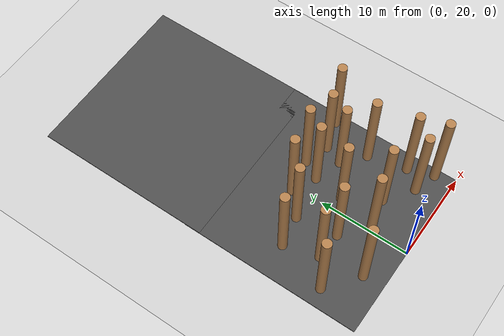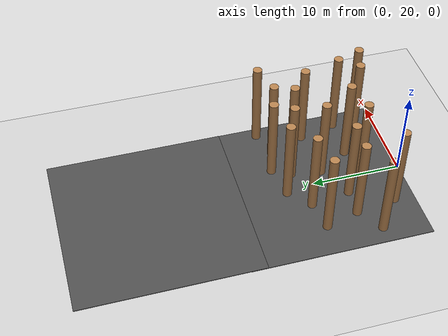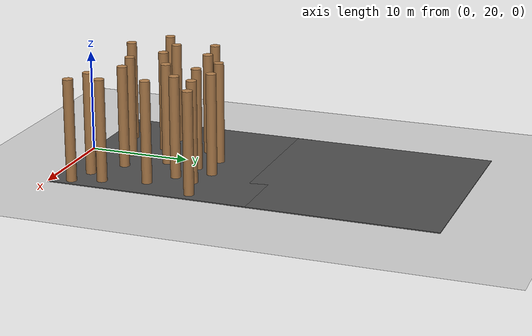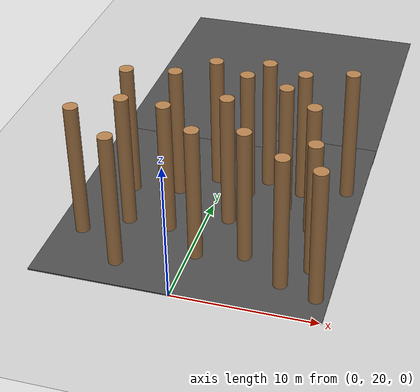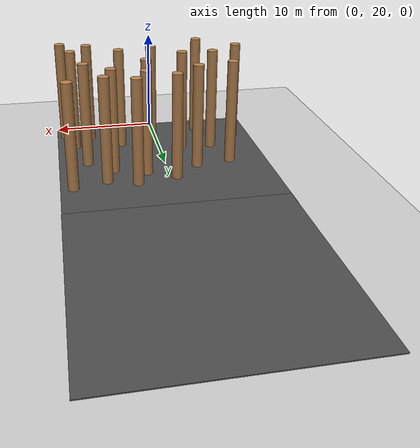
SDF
<sdf version="1.6">
 <world name="default">
  <model name="ground_plane">
   <static>1</static>
   <link name="link">
    <collision name="collision">
     <geometry><plane><normal>0 0 1</normal><size>100 100</size></plane></geometry>
     <surface><friction><ode><mu>100</mu><mu2>50</mu2></ode></friction></surface>
    </collision>
    <visual name="visual">
     <cast_shadows>0</cast_shadows>
     <geometry><plane><normal>0 0 1</normal><size>100 100</size></plane></geometry>
     <material>
      <script><uri>file://media/materials/scripts/gazebo.material</uri><name>Gazebo/Grey</name></script>
     </material>
    </visual>
   </link>
  </model>
  <model name="asphalt_plane_2">
   <static>1</static>
   <link name="link">
    <collision name="collision"><geometry><box><size>20 20 0.1</size></box></geometry></collision>
    <visual name="visual">
     <cast_shadows>0</cast_shadows>
     <geometry><box><size>20 20 0.1</size></box></geometry>
     <material>
      <script>
       <uri>model://asphalt_plane/materials/scripts</uri>
       <uri>model://asphalt_plane/materials/textures</uri>
       <name>vrc/asphalt</name>
      </script>
     </material>
    </visual>
   </link>
   <pose>0.117642 29.9977 0 0 -0 0</pose>
  </model>
  <model name="train_3">
   <link name="link_0_clone_0_clone_11_clone_19">
    <pose>7.08596 18.8441 0.043478 0 -0 3e-06</pose>
    <inertial>
     <mass>1000</mass>
     <inertia><ixx>0.145833</ixx><ixy>0</ixy><ixz>0</ixz><iyy>0.145833</iyy><iyz>0</iyz><izz>0.125</izz></inertia>
    </inertial>
    <visual name="visual">
     <pose>0 0 4.5 0 -0 0</pose>
     <geometry><cylinder><radius>0.5</radius><length>10</length></cylinder></geometry>
     <material>
      <lighting>1</lighting>
      <script><uri>file://media/materials/scripts/gazebo.material</uri><name>Gazebo/WoodFloor</name></script>
      <ambient>0.3 0.3 0.3 1</ambient>
      <diffuse>0.7 0.7 0.7 1</diffuse>
      <specular>0.01 0.01 0.01 1</specular>
      <emissive>0 0 0 1</emissive>
      <shader type="vertex"><normal_map>__default__</normal_map></shader>
     </material>
    </visual>
    <collision name="collision">
     <pose>0 0 4.5 0 -0 0</pose>
     <geometry><cylinder><radius>0.5</radius><length>10</length></cylinder></geometry>
     <surface>
      <friction>
       <ode><mu>1</mu><mu2>1</mu2><fdir1>0 0 0</fdir1><slip1>0</slip1><slip2>0</slip2></ode>
       <torsional>
        <coefficient>1</coefficient>
        <patch_radius>0</patch_radius>
        <surface_radius>0</surface_radius>
        <use_patch_radius>1</use_patch_radius>
        <ode><slip>0</slip></ode>
       </torsional>
      </friction>
      <bounce><restitution_coefficient>0</restitution_coefficient><threshold>1e+06</threshold></bounce>
      <contact>
       <collide_without_contact>0</collide_without_contact>
       <collide_without_contact_bitmask>1</collide_without_contact_bitmask>
       <collide_bitmask>1</collide_bitmask>
       <ode>
        <soft_cfm>0</soft_cfm>
        <soft_erp>0.2</soft_erp>
        <kp>1e+13</kp>
        <kd>1</kd>
        <max_vel>0.01</max_vel>
        <min_depth>0</min_depth>
       </ode>
       <bullet>
        <split_impulse>1</split_impulse>
        <split_impulse_penetration_threshold>-0.01</split_impulse_penetration_threshold>
        <soft_cfm>0</soft_cfm>
        <soft_erp>0.2</soft_erp>
        <kp>1e+13</kp>
        <kd>1</kd>
       </bullet>
      </contact>
     </surface>
    </collision>
   </link>
   <link name="link_0_clone_0_clone_16">
    <pose>-3.95167 12.6277 0.043478 0 -0 0</pose>
    <inertial>
     <mass>1000</mass>
     <inertia><ixx>0.145833</ixx><ixy>0</ixy><ixz>0</ixz><iyy>0.145833</iyy><iyz>0</iyz><izz>0.125</izz></inertia>
    </inertial>
    <visual name="visual">
     <pose>0 0 4.5 0 -0 0</pose>
     <geometry><cylinder><radius>0.5</radius><length>10</length></cylinder></geometry>
     <material>
      <lighting>1</lighting>
      <script><uri>file://media/materials/scripts/gazebo.material</uri><name>Gazebo/WoodFloor</name></script>
      <ambient>0.3 0.3 0.3 1</ambient>
      <diffuse>0.7 0.7 0.7 1</diffuse>
      <specular>0.01 0.01 0.01 1</specular>
      <emissive>0 0 0 1</emissive>
      <shader type="vertex"><normal_map>__default__</normal_map></shader>
     </material>
    </visual>
    <collision name="collision">
     <pose>0 0 4.5 0 -0 0</pose>
     <geometry><cylinder><radius>0.5</radius><length>10</length></cylinder></geometry>
     <surface>
      <friction>
       <ode><mu>1</mu><mu2>1</mu2><fdir1>0 0 0</fdir1><slip1>0</slip1><slip2>0</slip2></ode>
       <torsional>
        <coefficient>1</coefficient>
        <patch_radius>0</patch_radius>
        <surface_radius>0</surface_radius>
        <use_patch_radius>1</use_patch_radius>
        <ode><slip>0</slip></ode>
       </torsional>
      </friction>
      <bounce><restitution_coefficient>0</restitution_coefficient><threshold>1e+06</threshold></bounce>
      <contact>
       <collide_without_contact>0</collide_without_contact>
       <collide_without_contact_bitmask>1</collide_without_contact_bitmask>
       <collide_bitmask>1</collide_bitmask>
       <ode>
        <soft_cfm>0</soft_cfm>
        <soft_erp>0.2</soft_erp>
        <kp>1e+13</kp>
        <kd>1</kd>
        <max_vel>0.01</max_vel>
        <min_depth>0</min_depth>
       </ode>
       <bullet>
        <split_impulse>1</split_impulse>
        <split_impulse_penetration_threshold>-0.01</split_impulse_penetration_threshold>
        <soft_cfm>0</soft_cfm>
        <soft_erp>0.2</soft_erp>
        <kp>1e+13</kp>
        <kd>1</kd>
       </bullet>
      </contact>
     </surface>
    </collision>
   </link>
   <link name="link_0_clone_0_clone_5_clone_18">
    <pose>0.694929 19.0204 0.043478 0 -0 3e-06</pose>
    <inertial>
     <mass>1000</mass>
     <inertia><ixx>0.145833</ixx><ixy>0</ixy><ixz>0</ixz><iyy>0.145833</iyy><iyz>0</iyz><izz>0.125</izz></inertia>
    </inertial>
    <visual name="visual">
     <pose>0 0 4.5 0 -0 0</pose>
     <geometry><cylinder><radius>0.5</radius><length>10</length></cylinder></geometry>
     <material>
      <lighting>1</lighting>
      <script><uri>file://media/materials/scripts/gazebo.material</uri><name>Gazebo/WoodFloor</name></script>
      <ambient>0.3 0.3 0.3 1</ambient>
      <diffuse>0.7 0.7 0.7 1</diffuse>
      <specular>0.01 0.01 0.01 1</specular>
      <emissive>0 0 0 1</emissive>
      <shader type="vertex"><normal_map>__default__</normal_map></shader>
     </material>
    </visual>
    <collision name="collision">
     <pose>0 0 4.5 0 -0 0</pose>
     <geometry><cylinder><radius>0.5</radius><length>10</length></cylinder></geometry>
     <surface>
      <friction>
       <ode><mu>1</mu><mu2>1</mu2><fdir1>0 0 0</fdir1><slip1>0</slip1><slip2>0</slip2></ode>
       <torsional>
        <coefficient>1</coefficient>
        <patch_radius>0</patch_radius>
        <surface_radius>0</surface_radius>
        <use_patch_radius>1</use_patch_radius>
        <ode><slip>0</slip></ode>
       </torsional>
      </friction>
      <bounce><restitution_coefficient>0</restitution_coefficient><threshold>1e+06</threshold></bounce>
      <contact>
       <collide_without_contact>0</collide_without_contact>
       <collide_without_contact_bitmask>1</collide_without_contact_bitmask>
       <collide_bitmask>1</collide_bitmask>
       <ode>
        <soft_cfm>0</soft_cfm>
        <soft_erp>0.2</soft_erp>
        <kp>1e+13</kp>
        <kd>1</kd>
        <max_vel>0.01</max_vel>
        <min_depth>0</min_depth>
       </ode>
       <bullet>
        <split_impulse>1</split_impulse>
        <split_impulse_penetration_threshold>-0.01</split_impulse_penetration_threshold>
        <soft_cfm>0</soft_cfm>
        <soft_erp>0.2</soft_erp>
        <kp>1e+13</kp>
        <kd>1</kd>
       </bullet>
      </contact>
     </surface>
    </collision>
   </link>
   <link name="link_0_clone_0_clone_5_clone_19">
    <pose>-4.98555 16.3648 0.043478 0 -0 3e-06</pose>
    <inertial>
     <mass>1000</mass>
     <inertia><ixx>0.145833</ixx><ixy>0</ixy><ixz>0</ixz><iyy>0.145833</iyy><iyz>0</iyz><izz>0.125</izz></inertia>
    </inertial>
    <visual name="visual">
     <pose>0 0 4.5 0 -0 0</pose>
     <geometry><cylinder><radius>0.5</radius><length>10</length></cylinder></geometry>
     <material>
      <lighting>1</lighting>
      <script><uri>file://media/materials/scripts/gazebo.material</uri><name>Gazebo/WoodFloor</name></script>
      <ambient>0.3 0.3 0.3 1</ambient>
      <diffuse>0.7 0.7 0.7 1</diffuse>
      <specular>0.01 0.01 0.01 1</specular>
      <emissive>0 0 0 1</emissive>
      <shader type="vertex"><normal_map>__default__</normal_map></shader>
     </material>
    </visual>
    <collision name="collision">
     <pose>0 0 4.5 0 -0 0</pose>
     <geometry><cylinder><radius>0.5</radius><length>10</length></cylinder></geometry>
     <surface>
      <friction>
       <ode><mu>1</mu><mu2>1</mu2><fdir1>0 0 0</fdir1><slip1>0</slip1><slip2>0</slip2></ode>
       <torsional>
        <coefficient>1</coefficient>
        <patch_radius>0</patch_radius>
        <surface_radius>0</surface_radius>
        <use_patch_radius>1</use_patch_radius>
        <ode><slip>0</slip></ode>
       </torsional>
      </friction>
      <bounce><restitution_coefficient>0</restitution_coefficient><threshold>1e+06</threshold></bounce>
      <contact>
       <collide_without_contact>0</collide_without_contact>
       <collide_without_contact_bitmask>1</collide_without_contact_bitmask>
       <collide_bitmask>1</collide_bitmask>
       <ode>
        <soft_cfm>0</soft_cfm>
        <soft_erp>0.2</soft_erp>
        <kp>1e+13</kp>
        <kd>1</kd>
        <max_vel>0.01</max_vel>
        <min_depth>0</min_depth>
       </ode>
       <bullet>
        <split_impulse>1</split_impulse>
        <split_impulse_penetration_threshold>-0.01</split_impulse_penetration_threshold>
        <soft_cfm>0</soft_cfm>
        <soft_erp>0.2</soft_erp>
        <kp>1e+13</kp>
        <kd>1</kd>
       </bullet>
      </contact>
     </surface>
    </collision>
   </link>
   <link name="link_0_clone_0_clone_5_clone_19_clone">
    <pose>-0.976364 12.5026 0.043478 0 -0 6e-06</pose>
    <inertial>
     <mass>1000</mass>
     <inertia><ixx>0.145833</ixx><ixy>0</ixy><ixz>0</ixz><iyy>0.145833</iyy><iyz>0</iyz><izz>0.125</izz></inertia>
    </inertial>
    <visual name="visual">
     <pose>0 0 4.5 0 -0 0</pose>
     <geometry><cylinder><radius>0.5</radius><length>10</length></cylinder></geometry>
     <material>
      <lighting>1</lighting>
      <script><uri>file://media/materials/scripts/gazebo.material</uri><name>Gazebo/WoodFloor</name></script>
      <ambient>0.3 0.3 0.3 1</ambient>
      <diffuse>0.7 0.7 0.7 1</diffuse>
      <specular>0.01 0.01 0.01 1</specular>
      <emissive>0 0 0 1</emissive>
      <shader type="vertex"><normal_map>__default__</normal_map></shader>
     </material>
    </visual>
    <collision name="collision">
     <pose>0 0 4.5 0 -0 0</pose>
     <geometry><cylinder><radius>0.5</radius><length>10</length></cylinder></geometry>
     <surface>
      <friction>
       <ode><mu>1</mu><mu2>1</mu2><fdir1>0 0 0</fdir1><slip1>0</slip1><slip2>0</slip2></ode>
       <torsional>
        <coefficient>1</coefficient>
        <patch_radius>0</patch_radius>
        <surface_radius>0</surface_radius>
        <use_patch_radius>1</use_patch_radius>
        <ode><slip>0</slip></ode>
       </torsional>
      </friction>
      <bounce><restitution_coefficient>0</restitution_coefficient><threshold>1e+06</threshold></bounce>
      <contact>
       <collide_without_contact>0</collide_without_contact>
       <collide_without_contact_bitmask>1</collide_without_contact_bitmask>
       <collide_bitmask>1</collide_bitmask>
       <ode>
        <soft_cfm>0</soft_cfm>
        <soft_erp>0.2</soft_erp>
        <kp>1e+13</kp>
        <kd>1</kd>
        <max_vel>0.01</max_vel>
        <min_depth>0</min_depth>
       </ode>
       <bullet>
        <split_impulse>1</split_impulse>
        <split_impulse_penetration_threshold>-0.01</split_impulse_penetration_threshold>
        <soft_cfm>0</soft_cfm>
        <soft_erp>0.2</soft_erp>
        <kp>1e+13</kp>
        <kd>1</kd>
       </bullet>
      </contact>
     </surface>
    </collision>
   </link>
   <link name="link_0_clone_0_clone_5_clone_19_clone_12">
    <pose>-3.25564 8.05891 0.043478 0 -0 6e-06</pose>
    <inertial>
     <mass>1000</mass>
     <inertia><ixx>0.145833</ixx><ixy>0</ixy><ixz>0</ixz><iyy>0.145833</iyy><iyz>0</iyz><izz>0.125</izz></inertia>
    </inertial>
    <visual name="visual">
     <pose>0 0 4.5 0 -0 0</pose>
     <geometry><cylinder><radius>0.5</radius><length>10</length></cylinder></geometry>
     <material>
      <lighting>1</lighting>
      <script><uri>file://media/materials/scripts/gazebo.material</uri><name>Gazebo/WoodFloor</name></script>
      <ambient>0.3 0.3 0.3 1</ambient>
      <diffuse>0.7 0.7 0.7 1</diffuse>
      <specular>0.01 0.01 0.01 1</specular>
      <emissive>0 0 0 1</emissive>
      <shader type="vertex"><normal_map>__default__</normal_map></shader>
     </material>
    </visual>
    <collision name="collision">
     <pose>0 0 4.5 0 -0 0</pose>
     <geometry><cylinder><radius>0.5</radius><length>10</length></cylinder></geometry>
     <surface>
      <friction>
       <ode><mu>1</mu><mu2>1</mu2><fdir1>0 0 0</fdir1><slip1>0</slip1><slip2>0</slip2></ode>
       <torsional>
        <coefficient>1</coefficient>
        <patch_radius>0</patch_radius>
        <surface_radius>0</surface_radius>
        <use_patch_radius>1</use_patch_radius>
        <ode><slip>0</slip></ode>
       </torsional>
      </friction>
      <bounce><restitution_coefficient>0</restitution_coefficient><threshold>1e+06</threshold></bounce>
      <contact>
       <collide_without_contact>0</collide_without_contact>
       <collide_without_contact_bitmask>1</collide_without_contact_bitmask>
       <collide_bitmask>1</collide_bitmask>
       <ode>
        <soft_cfm>0</soft_cfm>
        <soft_erp>0.2</soft_erp>
        <kp>1e+13</kp>
        <kd>1</kd>
        <max_vel>0.01</max_vel>
        <min_depth>0</min_depth>
       </ode>
       <bullet>
        <split_impulse>1</split_impulse>
        <split_impulse_penetration_threshold>-0.01</split_impulse_penetration_threshold>
        <soft_cfm>0</soft_cfm>
        <soft_erp>0.2</soft_erp>
        <kp>1e+13</kp>
        <kd>1</kd>
       </bullet>
      </contact>
     </surface>
    </collision>
   </link>
   <link name="link_0_clone_0_clone_5_clone_19_clone_16">
    <pose>10.5244 7.88191 0.043478 0 -0 6e-06</pose>
    <inertial>
     <mass>1000</mass>
     <inertia><ixx>0.145833</ixx><ixy>0</ixy><ixz>0</ixz><iyy>0.145833</iyy><iyz>0</iyz><izz>0.125</izz></inertia>
    </inertial>
    <visual name="visual">
     <pose>0 0 4.5 0 -0 0</pose>
     <geometry><cylinder><radius>0.5</radius><length>10</length></cylinder></geometry>
     <material>
      <lighting>1</lighting>
      <script><uri>file://media/materials/scripts/gazebo.material</uri><name>Gazebo/WoodFloor</name></script>
      <ambient>0.3 0.3 0.3 1</ambient>
      <diffuse>0.7 0.7 0.7 1</diffuse>
      <specular>0.01 0.01 0.01 1</specular>
      <emissive>0 0 0 1</emissive>
      <shader type="vertex"><normal_map>__default__</normal_map></shader>
     </material>
    </visual>
    <collision name="collision">
     <pose>0 0 4.5 0 -0 0</pose>
     <geometry><cylinder><radius>0.5</radius><length>10</length></cylinder></geometry>
     <surface>
      <friction>
       <ode><mu>1</mu><mu2>1</mu2><fdir1>0 0 0</fdir1><slip1>0</slip1><slip2>0</slip2></ode>
       <torsional>
        <coefficient>1</coefficient>
        <patch_radius>0</patch_radius>
        <surface_radius>0</surface_radius>
        <use_patch_radius>1</use_patch_radius>
        <ode><slip>0</slip></ode>
       </torsional>
      </friction>
      <bounce><restitution_coefficient>0</restitution_coefficient><threshold>1e+06</threshold></bounce>
      <contact>
       <collide_without_contact>0</collide_without_contact>
       <collide_without_contact_bitmask>1</collide_without_contact_bitmask>
       <collide_bitmask>1</collide_bitmask>
       <ode>
        <soft_cfm>0</soft_cfm>
        <soft_erp>0.2</soft_erp>
        <kp>1e+13</kp>
        <kd>1</kd>
        <max_vel>0.01</max_vel>
        <min_depth>0</min_depth>
       </ode>
       <bullet>
        <split_impulse>1</split_impulse>
        <split_impulse_penetration_threshold>-0.01</split_impulse_penetration_threshold>
        <soft_cfm>0</soft_cfm>
        <soft_erp>0.2</soft_erp>
        <kp>1e+13</kp>
        <kd>1</kd>
       </bullet>
      </contact>
     </surface>
    </collision>
   </link>
   <link name="link_0_clone_0_clone_5_clone_19_clone_2">
    <pose>4.96938 10.8147 0.043478 0 -0 6e-06</pose>
    <inertial>
     <mass>1000</mass>
     <inertia><ixx>0.145833</ixx><ixy>0</ixy><ixz>0</ixz><iyy>0.145833</iyy><iyz>0</iyz><izz>0.125</izz></inertia>
    </inertial>
    <visual name="visual">
     <pose>0 0 4.5 0 -0 0</pose>
     <geometry><cylinder><radius>0.5</radius><length>10</length></cylinder></geometry>
     <material>
      <lighting>1</lighting>
      <script><uri>file://media/materials/scripts/gazebo.material</uri><name>Gazebo/WoodFloor</name></script>
      <ambient>0.3 0.3 0.3 1</ambient>
      <diffuse>0.7 0.7 0.7 1</diffuse>
      <specular>0.01 0.01 0.01 1</specular>
      <emissive>0 0 0 1</emissive>
      <shader type="vertex"><normal_map>__default__</normal_map></shader>
     </material>
    </visual>
    <collision name="collision">
     <pose>0 0 4.5 0 -0 0</pose>
     <geometry><cylinder><radius>0.5</radius><length>10</length></cylinder></geometry>
     <surface>
      <friction>
       <ode><mu>1</mu><mu2>1</mu2><fdir1>0 0 0</fdir1><slip1>0</slip1><slip2>0</slip2></ode>
       <torsional>
        <coefficient>1</coefficient>
        <patch_radius>0</patch_radius>
        <surface_radius>0</surface_radius>
        <use_patch_radius>1</use_patch_radius>
        <ode><slip>0</slip></ode>
       </torsional>
      </friction>
      <bounce><restitution_coefficient>0</restitution_coefficient><threshold>1e+06</threshold></bounce>
      <contact>
       <collide_without_contact>0</collide_without_contact>
       <collide_without_contact_bitmask>1</collide_without_contact_bitmask>
       <collide_bitmask>1</collide_bitmask>
       <ode>
        <soft_cfm>0</soft_cfm>
        <soft_erp>0.2</soft_erp>
        <kp>1e+13</kp>
        <kd>1</kd>
        <max_vel>0.01</max_vel>
        <min_depth>0</min_depth>
       </ode>
       <bullet>
        <split_impulse>1</split_impulse>
        <split_impulse_penetration_threshold>-0.01</split_impulse_penetration_threshold>
        <soft_cfm>0</soft_cfm>
        <soft_erp>0.2</soft_erp>
        <kp>1e+13</kp>
        <kd>1</kd>
       </bullet>
      </contact>
     </surface>
    </collision>
   </link>
   <link name="link_0_clone_0_clone_5_clone_19_clone_20">
    <pose>6.27389 16.7532 0.043478 0 -0 6e-06</pose>
    <inertial>
     <mass>1000</mass>
     <inertia><ixx>0.145833</ixx><ixy>0</ixy><ixz>0</ixz><iyy>0.145833</iyy><iyz>0</iyz><izz>0.125</izz></inertia>
    </inertial>
    <visual name="visual">
     <pose>0 0 4.5 0 -0 0</pose>
     <geometry><cylinder><radius>0.5</radius><length>10</length></cylinder></geometry>
     <material>
      <lighting>1</lighting>
      <script><uri>file://media/materials/scripts/gazebo.material</uri><name>Gazebo/WoodFloor</name></script>
      <ambient>0.3 0.3 0.3 1</ambient>
      <diffuse>0.7 0.7 0.7 1</diffuse>
      <specular>0.01 0.01 0.01 1</specular>
      <emissive>0 0 0 1</emissive>
      <shader type="vertex"><normal_map>__default__</normal_map></shader>
     </material>
    </visual>
    <collision name="collision">
     <pose>0 0 4.5 0 -0 0</pose>
     <geometry><cylinder><radius>0.5</radius><length>10</length></cylinder></geometry>
     <surface>
      <friction>
       <ode><mu>1</mu><mu2>1</mu2><fdir1>0 0 0</fdir1><slip1>0</slip1><slip2>0</slip2></ode>
       <torsional>
        <coefficient>1</coefficient>
        <patch_radius>0</patch_radius>
        <surface_radius>0</surface_radius>
        <use_patch_radius>1</use_patch_radius>
        <ode><slip>0</slip></ode>
       </torsional>
      </friction>
      <bounce><restitution_coefficient>0</restitution_coefficient><threshold>1e+06</threshold></bounce>
      <contact>
       <collide_without_contact>0</collide_without_contact>
       <collide_without_contact_bitmask>1</collide_without_contact_bitmask>
       <collide_bitmask>1</collide_bitmask>
       <ode>
        <soft_cfm>0</soft_cfm>
        <soft_erp>0.2</soft_erp>
        <kp>1e+13</kp>
        <kd>1</kd>
        <max_vel>0.01</max_vel>
        <min_depth>0</min_depth>
       </ode>
       <bullet>
        <split_impulse>1</split_impulse>
        <split_impulse_penetration_threshold>-0.01</split_impulse_penetration_threshold>
        <soft_cfm>0</soft_cfm>
        <soft_erp>0.2</soft_erp>
        <kp>1e+13</kp>
        <kd>1</kd>
       </bullet>
      </contact>
     </surface>
    </collision>
   </link>
   <link name="link_0_clone_0_clone_5_clone_19_clone_22">
    <pose>-1.63603 16.9437 0.043478 0 -0 6e-06</pose>
    <inertial>
     <mass>1000</mass>
     <inertia><ixx>0.145833</ixx><ixy>0</ixy><ixz>0</ixz><iyy>0.145833</iyy><iyz>0</iyz><izz>0.125</izz></inertia>
    </inertial>
    <visual name="visual">
     <pose>0 0 4.5 0 -0 0</pose>
     <geometry><cylinder><radius>0.5</radius><length>10</length></cylinder></geometry>
     <material>
      <lighting>1</lighting>
      <script><uri>file://media/materials/scripts/gazebo.material</uri><name>Gazebo/WoodFloor</name></script>
      <ambient>0.3 0.3 0.3 1</ambient>
      <diffuse>0.7 0.7 0.7 1</diffuse>
      <specular>0.01 0.01 0.01 1</specular>
      <emissive>0 0 0 1</emissive>
      <shader type="vertex"><normal_map>__default__</normal_map></shader>
     </material>
    </visual>
    <collision name="collision">
     <pose>0 0 4.5 0 -0 0</pose>
     <geometry><cylinder><radius>0.5</radius><length>10</length></cylinder></geometry>
     <surface>
      <friction>
       <ode><mu>1</mu><mu2>1</mu2><fdir1>0 0 0</fdir1><slip1>0</slip1><slip2>0</slip2></ode>
       <torsional>
        <coefficient>1</coefficient>
        <patch_radius>0</patch_radius>
        <surface_radius>0</surface_radius>
        <use_patch_radius>1</use_patch_radius>
        <ode><slip>0</slip></ode>
       </torsional>
      </friction>
      <bounce><restitution_coefficient>0</restitution_coefficient><threshold>1e+06</threshold></bounce>
      <contact>
       <collide_without_contact>0</collide_without_contact>
       <collide_without_contact_bitmask>1</collide_without_contact_bitmask>
       <collide_bitmask>1</collide_bitmask>
       <ode>
        <soft_cfm>0</soft_cfm>
        <soft_erp>0.2</soft_erp>
        <kp>1e+13</kp>
        <kd>1</kd>
        <max_vel>0.01</max_vel>
        <min_depth>0</min_depth>
       </ode>
       <bullet>
        <split_impulse>1</split_impulse>
        <split_impulse_penetration_threshold>-0.01</split_impulse_penetration_threshold>
        <soft_cfm>0</soft_cfm>
        <soft_erp>0.2</soft_erp>
        <kp>1e+13</kp>
        <kd>1</kd>
       </bullet>
      </contact>
     </surface>
    </collision>
   </link>
   <link name="link_0_clone_0_clone_5_clone_19_clone_23">
    <pose>4.36938 19.6972 0.043478 0 -0 6e-06</pose>
    <inertial>
     <mass>1000</mass>
     <inertia><ixx>0.145833</ixx><ixy>0</ixy><ixz>0</ixz><iyy>0.145833</iyy><iyz>0</iyz><izz>0.125</izz></inertia>
    </inertial>
    <visual name="visual">
     <pose>0 0 4.5 0 -0 0</pose>
     <geometry><cylinder><radius>0.5</radius><length>10</length></cylinder></geometry>
     <material>
      <lighting>1</lighting>
      <script><uri>file://media/materials/scripts/gazebo.material</uri><name>Gazebo/WoodFloor</name></script>
      <ambient>0.3 0.3 0.3 1</ambient>
      <diffuse>0.7 0.7 0.7 1</diffuse>
      <specular>0.01 0.01 0.01 1</specular>
      <emissive>0 0 0 1</emissive>
      <shader type="vertex"><normal_map>__default__</normal_map></shader>
     </material>
    </visual>
    <collision name="collision">
     <pose>0 0 4.5 0 -0 0</pose>
     <geometry><cylinder><radius>0.5</radius><length>10</length></cylinder></geometry>
     <surface>
      <friction>
       <ode><mu>1</mu><mu2>1</mu2><fdir1>0 0 0</fdir1><slip1>0</slip1><slip2>0</slip2></ode>
       <torsional>
        <coefficient>1</coefficient>
        <patch_radius>0</patch_radius>
        <surface_radius>0</surface_radius>
        <use_patch_radius>1</use_patch_radius>
        <ode><slip>0</slip></ode>
       </torsional>
      </friction>
      <bounce><restitution_coefficient>0</restitution_coefficient><threshold>1e+06</threshold></bounce>
      <contact>
       <collide_without_contact>0</collide_without_contact>
       <collide_without_contact_bitmask>1</collide_without_contact_bitmask>
       <collide_bitmask>1</collide_bitmask>
       <ode>
        <soft_cfm>0</soft_cfm>
        <soft_erp>0.2</soft_erp>
        <kp>1e+13</kp>
        <kd>1</kd>
        <max_vel>0.01</max_vel>
        <min_depth>0</min_depth>
       </ode>
       <bullet>
        <split_impulse>1</split_impulse>
        <split_impulse_penetration_threshold>-0.01</split_impulse_penetration_threshold>
        <soft_cfm>0</soft_cfm>
        <soft_erp>0.2</soft_erp>
        <kp>1e+13</kp>
        <kd>1</kd>
       </bullet>
      </contact>
     </surface>
    </collision>
   </link>
   <link name="link_0_clone_0_clone_5_clone_19_clone_3">
    <pose>9.60678 10.6242 0.043478 0 -0 6e-06</pose>
    <inertial>
     <mass>1000</mass>
     <inertia><ixx>0.145833</ixx><ixy>0</ixy><ixz>0</ixz><iyy>0.145833</iyy><iyz>0</iyz><izz>0.125</izz></inertia>
    </inertial>
    <visual name="visual">
     <pose>0 0 4.5 0 -0 0</pose>
     <geometry><cylinder><radius>0.5</radius><length>10</length></cylinder></geometry>
     <material>
      <lighting>1</lighting>
      <script><uri>file://media/materials/scripts/gazebo.material</uri><name>Gazebo/WoodFloor</name></script>
      <ambient>0.3 0.3 0.3 1</ambient>
      <diffuse>0.7 0.7 0.7 1</diffuse>
      <specular>0.01 0.01 0.01 1</specular>
      <emissive>0 0 0 1</emissive>
      <shader type="vertex"><normal_map>__default__</normal_map></shader>
     </material>
    </visual>
    <collision name="collision">
     <pose>0 0 4.5 0 -0 0</pose>
     <geometry><cylinder><radius>0.5</radius><length>10</length></cylinder></geometry>
     <surface>
      <friction>
       <ode><mu>1</mu><mu2>1</mu2><fdir1>0 0 0</fdir1><slip1>0</slip1><slip2>0</slip2></ode>
       <torsional>
        <coefficient>1</coefficient>
        <patch_radius>0</patch_radius>
        <surface_radius>0</surface_radius>
        <use_patch_radius>1</use_patch_radius>
        <ode><slip>0</slip></ode>
       </torsional>
      </friction>
      <bounce><restitution_coefficient>0</restitution_coefficient><threshold>1e+06</threshold></bounce>
      <contact>
       <collide_without_contact>0</collide_without_contact>
       <collide_without_contact_bitmask>1</collide_without_contact_bitmask>
       <collide_bitmask>1</collide_bitmask>
       <ode>
        <soft_cfm>0</soft_cfm>
        <soft_erp>0.2</soft_erp>
        <kp>1e+13</kp>
        <kd>1</kd>
        <max_vel>0.01</max_vel>
        <min_depth>0</min_depth>
       </ode>
       <bullet>
        <split_impulse>1</split_impulse>
        <split_impulse_penetration_threshold>-0.01</split_impulse_penetration_threshold>
        <soft_cfm>0</soft_cfm>
        <soft_erp>0.2</soft_erp>
        <kp>1e+13</kp>
        <kd>1</kd>
       </bullet>
      </contact>
     </surface>
    </collision>
   </link>
   <link name="link_0_clone_0_clone_5_clone_19_clone_5">
    <pose>-6.72609 10.7532 0.043478 0 -0 6e-06</pose>
    <inertial>
     <mass>1000</mass>
     <inertia><ixx>0.145833</ixx><ixy>0</ixy><ixz>0</ixz><iyy>0.145833</iyy><iyz>0</iyz><izz>0.125</izz></inertia>
    </inertial>
    <visual name="visual">
     <pose>0 0 4.5 0 -0 0</pose>
     <geometry><cylinder><radius>0.5</radius><length>10</length></cylinder></geometry>
     <material>
      <lighting>1</lighting>
      <script><uri>file://media/materials/scripts/gazebo.material</uri><name>Gazebo/WoodFloor</name></script>
      <ambient>0.3 0.3 0.3 1</ambient>
      <diffuse>0.7 0.7 0.7 1</diffuse>
      <specular>0.01 0.01 0.01 1</specular>
      <emissive>0 0 0 1</emissive>
      <shader type="vertex"><normal_map>__default__</normal_map></shader>
     </material>
    </visual>
    <collision name="collision">
     <pose>0 0 4.5 0 -0 0</pose>
     <geometry><cylinder><radius>0.5</radius><length>10</length></cylinder></geometry>
     <surface>
      <friction>
       <ode><mu>1</mu><mu2>1</mu2><fdir1>0 0 0</fdir1><slip1>0</slip1><slip2>0</slip2></ode>
       <torsional>
        <coefficient>1</coefficient>
        <patch_radius>0</patch_radius>
        <surface_radius>0</surface_radius>
        <use_patch_radius>1</use_patch_radius>
        <ode><slip>0</slip></ode>
       </torsional>
      </friction>
      <bounce><restitution_coefficient>0</restitution_coefficient><threshold>1e+06</threshold></bounce>
      <contact>
       <collide_without_contact>0</collide_without_contact>
       <collide_without_contact_bitmask>1</collide_without_contact_bitmask>
       <collide_bitmask>1</collide_bitmask>
       <ode>
        <soft_cfm>0</soft_cfm>
        <soft_erp>0.2</soft_erp>
        <kp>1e+13</kp>
        <kd>1</kd>
        <max_vel>0.01</max_vel>
        <min_depth>0</min_depth>
       </ode>
       <bullet>
        <split_impulse>1</split_impulse>
        <split_impulse_penetration_threshold>-0.01</split_impulse_penetration_threshold>
        <soft_cfm>0</soft_cfm>
        <soft_erp>0.2</soft_erp>
        <kp>1e+13</kp>
        <kd>1</kd>
       </bullet>
      </contact>
     </surface>
    </collision>
   </link>
   <link name="link_0_clone_0_clone_5_clone_6_clone_14">
    <pose>2.79926 14.4023 0.043478 0 -0 6e-06</pose>
    <inertial>
     <mass>1000</mass>
     <inertia><ixx>0.145833</ixx><ixy>0</ixy><ixz>0</ixz><iyy>0.145833</iyy><iyz>0</iyz><izz>0.125</izz></inertia>
    </inertial>
    <visual name="visual">
     <pose>0 0 4.5 0 -0 0</pose>
     <geometry><cylinder><radius>0.5</radius><length>10</length></cylinder></geometry>
     <material>
      <lighting>1</lighting>
      <script><uri>file://media/materials/scripts/gazebo.material</uri><name>Gazebo/WoodFloor</name></script>
      <ambient>0.3 0.3 0.3 1</ambient>
      <diffuse>0.7 0.7 0.7 1</diffuse>
      <specular>0.01 0.01 0.01 1</specular>
      <emissive>0 0 0 1</emissive>
      <shader type="vertex"><normal_map>__default__</normal_map></shader>
     </material>
    </visual>
    <collision name="collision">
     <pose>0 0 4.5 0 -0 0</pose>
     <geometry><cylinder><radius>0.5</radius><length>10</length></cylinder></geometry>
     <surface>
      <friction>
       <ode><mu>1</mu><mu2>1</mu2><fdir1>0 0 0</fdir1><slip1>0</slip1><slip2>0</slip2></ode>
       <torsional>
        <coefficient>1</coefficient>
        <patch_radius>0</patch_radius>
        <surface_radius>0</surface_radius>
        <use_patch_radius>1</use_patch_radius>
        <ode><slip>0</slip></ode>
       </torsional>
      </friction>
      <bounce><restitution_coefficient>0</restitution_coefficient><threshold>1e+06</threshold></bounce>
      <contact>
       <collide_without_contact>0</collide_without_contact>
       <collide_without_contact_bitmask>1</collide_without_contact_bitmask>
       <collide_bitmask>1</collide_bitmask>
       <ode>
        <soft_cfm>0</soft_cfm>
        <soft_erp>0.2</soft_erp>
        <kp>1e+13</kp>
        <kd>1</kd>
        <max_vel>0.01</max_vel>
        <min_depth>0</min_depth>
       </ode>
       <bullet>
        <split_impulse>1</split_impulse>
        <split_impulse_penetration_threshold>-0.01</split_impulse_penetration_threshold>
        <soft_cfm>0</soft_cfm>
        <soft_erp>0.2</soft_erp>
        <kp>1e+13</kp>
        <kd>1</kd>
       </bullet>
      </contact>
     </surface>
    </collision>
   </link>
   <link name="link_0_clone_0_clone_5_clone_6_clone_15">
    <pose>8.60647 14.81 0.043478 0 -0 6e-06</pose>
    <inertial>
     <mass>1000</mass>
     <inertia><ixx>0.145833</ixx><ixy>0</ixy><ixz>0</ixz><iyy>0.145833</iyy><iyz>0</iyz><izz>0.125</izz></inertia>
    </inertial>
    <visual name="visual">
     <pose>0 0 4.5 0 -0 0</pose>
     <geometry><cylinder><radius>0.5</radius><length>10</length></cylinder></geometry>
     <material>
      <lighting>1</lighting>
      <script><uri>file://media/materials/scripts/gazebo.material</uri><name>Gazebo/WoodFloor</name></script>
      <ambient>0.3 0.3 0.3 1</ambient>
      <diffuse>0.7 0.7 0.7 1</diffuse>
      <specular>0.01 0.01 0.01 1</specular>
      <emissive>0 0 0 1</emissive>
      <shader type="vertex"><normal_map>__default__</normal_map></shader>
     </material>
    </visual>
    <collision name="collision">
     <pose>0 0 4.5 0 -0 0</pose>
     <geometry><cylinder><radius>0.5</radius><length>10</length></cylinder></geometry>
     <surface>
      <friction>
       <ode><mu>1</mu><mu2>1</mu2><fdir1>0 0 0</fdir1><slip1>0</slip1><slip2>0</slip2></ode>
       <torsional>
        <coefficient>1</coefficient>
        <patch_radius>0</patch_radius>
        <surface_radius>0</surface_radius>
        <use_patch_radius>1</use_patch_radius>
        <ode><slip>0</slip></ode>
       </torsional>
      </friction>
      <bounce><restitution_coefficient>0</restitution_coefficient><threshold>1e+06</threshold></bounce>
      <contact>
       <collide_without_contact>0</collide_without_contact>
       <collide_without_contact_bitmask>1</collide_without_contact_bitmask>
       <collide_bitmask>1</collide_bitmask>
       <ode>
        <soft_cfm>0</soft_cfm>
        <soft_erp>0.2</soft_erp>
        <kp>1e+13</kp>
        <kd>1</kd>
        <max_vel>0.01</max_vel>
        <min_depth>0</min_depth>
       </ode>
       <bullet>
        <split_impulse>1</split_impulse>
        <split_impulse_penetration_threshold>-0.01</split_impulse_penetration_threshold>
        <soft_cfm>0</soft_cfm>
        <soft_erp>0.2</soft_erp>
        <kp>1e+13</kp>
        <kd>1</kd>
       </bullet>
      </contact>
     </surface>
    </collision>
   </link>
   <link name="link_0_clone_0_clone_5_clone_6_clone_16">
    <pose>10.2103 19.7617 0.043478 0 -0 6e-06</pose>
    <inertial>
     <mass>1000</mass>
     <inertia><ixx>0.145833</ixx><ixy>0</ixy><ixz>0</ixz><iyy>0.145833</iyy><iyz>0</iyz><izz>0.125</izz></inertia>
    </inertial>
    <visual name="visual">
     <pose>0 0 4.5 0 -0 0</pose>
     <geometry><cylinder><radius>0.5</radius><length>10</length></cylinder></geometry>
     <material>
      <lighting>1</lighting>
      <script><uri>file://media/materials/scripts/gazebo.material</uri><name>Gazebo/WoodFloor</name></script>
      <ambient>0.3 0.3 0.3 1</ambient>
      <diffuse>0.7 0.7 0.7 1</diffuse>
      <specular>0.01 0.01 0.01 1</specular>
      <emissive>0 0 0 1</emissive>
      <shader type="vertex"><normal_map>__default__</normal_map></shader>
     </material>
    </visual>
    <collision name="collision">
     <pose>0 0 4.5 0 -0 0</pose>
     <geometry><cylinder><radius>0.5</radius><length>10</length></cylinder></geometry>
     <surface>
      <friction>
       <ode><mu>1</mu><mu2>1</mu2><fdir1>0 0 0</fdir1><slip1>0</slip1><slip2>0</slip2></ode>
       <torsional>
        <coefficient>1</coefficient>
        <patch_radius>0</patch_radius>
        <surface_radius>0</surface_radius>
        <use_patch_radius>1</use_patch_radius>
        <ode><slip>0</slip></ode>
       </torsional>
      </friction>
      <bounce><restitution_coefficient>0</restitution_coefficient><threshold>1e+06</threshold></bounce>
      <contact>
       <collide_without_contact>0</collide_without_contact>
       <collide_without_contact_bitmask>1</collide_without_contact_bitmask>
       <collide_bitmask>1</collide_bitmask>
       <ode>
        <soft_cfm>0</soft_cfm>
        <soft_erp>0.2</soft_erp>
        <kp>1e+13</kp>
        <kd>1</kd>
        <max_vel>0.01</max_vel>
        <min_depth>0</min_depth>
       </ode>
       <bullet>
        <split_impulse>1</split_impulse>
        <split_impulse_penetration_threshold>-0.01</split_impulse_penetration_threshold>
        <soft_cfm>0</soft_cfm>
        <soft_erp>0.2</soft_erp>
        <kp>1e+13</kp>
        <kd>1</kd>
       </bullet>
      </contact>
     </surface>
    </collision>
   </link>
   <link name="link_0_clone_0_clone_5_clone_6_clone_17">
    <pose>3.27389 17.7532 0.043478 0 -0 6e-06</pose>
    <inertial>
     <mass>1000</mass>
     <inertia><ixx>0.145833</ixx><ixy>0</ixy><ixz>0</ixz><iyy>0.145833</iyy><iyz>0</iyz><izz>0.125</izz></inertia>
    </inertial>
    <visual name="visual">
     <pose>0 0 4.5 0 -0 0</pose>
     <geometry><cylinder><radius>0.5</radius><length>10</length></cylinder></geometry>
     <material>
      <lighting>1</lighting>
      <script><uri>file://media/materials/scripts/gazebo.material</uri><name>Gazebo/WoodFloor</name></script>
      <ambient>0.3 0.3 0.3 1</ambient>
      <diffuse>0.7 0.7 0.7 1</diffuse>
      <specular>0.01 0.01 0.01 1</specular>
      <emissive>0 0 0 1</emissive>
      <shader type="vertex"><normal_map>__default__</normal_map></shader>
     </material>
    </visual>
    <collision name="collision">
     <pose>0 0 4.5 0 -0 0</pose>
     <geometry><cylinder><radius>0.5</radius><length>10</length></cylinder></geometry>
     <surface>
      <friction>
       <ode><mu>1</mu><mu2>1</mu2><fdir1>0 0 0</fdir1><slip1>0</slip1><slip2>0</slip2></ode>
       <torsional>
        <coefficient>1</coefficient>
        <patch_radius>0</patch_radius>
        <surface_radius>0</surface_radius>
        <use_patch_radius>1</use_patch_radius>
        <ode><slip>0</slip></ode>
       </torsional>
      </friction>
      <bounce><restitution_coefficient>0</restitution_coefficient><threshold>1e+06</threshold></bounce>
      <contact>
       <collide_without_contact>0</collide_without_contact>
       <collide_without_contact_bitmask>1</collide_without_contact_bitmask>
       <collide_bitmask>1</collide_bitmask>
       <ode>
        <soft_cfm>0</soft_cfm>
        <soft_erp>0.2</soft_erp>
        <kp>1e+13</kp>
        <kd>1</kd>
        <max_vel>0.01</max_vel>
        <min_depth>0</min_depth>
       </ode>
       <bullet>
        <split_impulse>1</split_impulse>
        <split_impulse_penetration_threshold>-0.01</split_impulse_penetration_threshold>
        <soft_cfm>0</soft_cfm>
        <soft_erp>0.2</soft_erp>
        <kp>1e+13</kp>
        <kd>1</kd>
       </bullet>
      </contact>
     </surface>
    </collision>
   </link>
   <link name="link_0_clone_0_clone_5_clone_6_clone_18">
    <pose>7.97155 8.67697 0.043478 0 -0 6e-06</pose>
    <inertial>
     <mass>1000</mass>
     <inertia><ixx>0.145833</ixx><ixy>0</ixy><ixz>0</ixz><iyy>0.145833</iyy><iyz>0</iyz><izz>0.125</izz></inertia>
    </inertial>
    <visual name="visual">
     <pose>0 0 4.5 0 -0 0</pose>
     <geometry><cylinder><radius>0.5</radius><length>10</length></cylinder></geometry>
     <material>
      <lighting>1</lighting>
      <script><uri>file://media/materials/scripts/gazebo.material</uri><name>Gazebo/WoodFloor</name></script>
      <ambient>0.3 0.3 0.3 1</ambient>
      <diffuse>0.7 0.7 0.7 1</diffuse>
      <specular>0.01 0.01 0.01 1</specular>
      <emissive>0 0 0 1</emissive>
      <shader type="vertex"><normal_map>__default__</normal_map></shader>
     </material>
    </visual>
    <collision name="collision">
     <pose>0 0 4.5 0 -0 0</pose>
     <geometry><cylinder><radius>0.5</radius><length>10</length></cylinder></geometry>
     <surface>
      <friction>
       <ode><mu>1</mu><mu2>1</mu2><fdir1>0 0 0</fdir1><slip1>0</slip1><slip2>0</slip2></ode>
       <torsional>
        <coefficient>1</coefficient>
        <patch_radius>0</patch_radius>
        <surface_radius>0</surface_radius>
        <use_patch_radius>1</use_patch_radius>
        <ode><slip>0</slip></ode>
       </torsional>
      </friction>
      <bounce><restitution_coefficient>0</restitution_coefficient><threshold>1e+06</threshold></bounce>
      <contact>
       <collide_without_contact>0</collide_without_contact>
       <collide_without_contact_bitmask>1</collide_without_contact_bitmask>
       <collide_bitmask>1</collide_bitmask>
       <ode>
        <soft_cfm>0</soft_cfm>
        <soft_erp>0.2</soft_erp>
        <kp>1e+13</kp>
        <kd>1</kd>
        <max_vel>0.01</max_vel>
        <min_depth>0</min_depth>
       </ode>
       <bullet>
        <split_impulse>1</split_impulse>
        <split_impulse_penetration_threshold>-0.01</split_impulse_penetration_threshold>
        <soft_cfm>0</soft_cfm>
        <soft_erp>0.2</soft_erp>
        <kp>1e+13</kp>
        <kd>1</kd>
       </bullet>
      </contact>
     </surface>
    </collision>
   </link>
   <link name="link_0_clone_0_clone_5_clone_6_clone_20">
    <pose>1.71763 10.1272 0.043478 0 -0 6e-06</pose>
    <inertial>
     <mass>1000</mass>
     <inertia><ixx>0.145833</ixx><ixy>0</ixy><ixz>0</ixz><iyy>0.145833</iyy><iyz>0</iyz><izz>0.125</izz></inertia>
    </inertial>
    <visual name="visual">
     <pose>0 0 4.5 0 -0 0</pose>
     <geometry><cylinder><radius>0.5</radius><length>10</length></cylinder></geometry>
     <material>
      <lighting>1</lighting>
      <script><uri>file://media/materials/scripts/gazebo.material</uri><name>Gazebo/WoodFloor</name></script>
      <ambient>0.3 0.3 0.3 1</ambient>
      <diffuse>0.7 0.7 0.7 1</diffuse>
      <specular>0.01 0.01 0.01 1</specular>
      <emissive>0 0 0 1</emissive>
      <shader type="vertex"><normal_map>__default__</normal_map></shader>
     </material>
    </visual>
    <collision name="collision">
     <pose>0 0 4.5 0 -0 0</pose>
     <geometry><cylinder><radius>0.5</radius><length>10</length></cylinder></geometry>
     <surface>
      <friction>
       <ode><mu>1</mu><mu2>1</mu2><fdir1>0 0 0</fdir1><slip1>0</slip1><slip2>0</slip2></ode>
       <torsional>
        <coefficient>1</coefficient>
        <patch_radius>0</patch_radius>
        <surface_radius>0</surface_radius>
        <use_patch_radius>1</use_patch_radius>
        <ode><slip>0</slip></ode>
       </torsional>
      </friction>
      <bounce><restitution_coefficient>0</restitution_coefficient><threshold>1e+06</threshold></bounce>
      <contact>
       <collide_without_contact>0</collide_without_contact>
       <collide_without_contact_bitmask>1</collide_without_contact_bitmask>
       <collide_bitmask>1</collide_bitmask>
       <ode>
        <soft_cfm>0</soft_cfm>
        <soft_erp>0.2</soft_erp>
        <kp>1e+13</kp>
        <kd>1</kd>
        <max_vel>0.01</max_vel>
        <min_depth>0</min_depth>
       </ode>
       <bullet>
        <split_impulse>1</split_impulse>
        <split_impulse_penetration_threshold>-0.01</split_impulse_penetration_threshold>
        <soft_cfm>0</soft_cfm>
        <soft_erp>0.2</soft_erp>
        <kp>1e+13</kp>
        <kd>1</kd>
       </bullet>
      </contact>
     </surface>
    </collision>
   </link>
   <static>1</static>
   <pose>-1.27394 14.2468 0.506522 0 0 -3e-06</pose>
  </model>
  <model name="asphalt_plane">
   <link name="link">
    <inertial>
     <mass>1</mass>
     <inertia><ixx>1</ixx><ixy>0</ixy><ixz>0</ixz><iyy>1</iyy><iyz>0</iyz><izz>1</izz></inertia>
    </inertial>
    <visual name="visual">
     <cast_shadows>0</cast_shadows>
     <geometry><box><size>20 20 0.1</size></box></geometry>
     <material>
      <script>
       <uri>model://asphalt_plane/materials/scripts</uri>
       <uri>model://asphalt_plane/materials/textures</uri>
       <name>vrc/asphalt</name>
      </script>
      <ambient>0.5 0.5 0.5 1</ambient>
      <diffuse>0.5 0.5 0.5 1</diffuse>
      <specular>0.2 0.2 0.2 1</specular>
      <emissive>0 0 0 1</emissive>
      <shader type="vertex"><normal_map>__default__</normal_map></shader>
     </material>
    </visual>
    <collision name="collision">
     <geometry><box><size>20 20 0.1</size></box></geometry>
     <surface>
      <friction>
       <ode><mu>1</mu><mu2>1</mu2><fdir1>0 0 0</fdir1><slip1>0</slip1><slip2>0</slip2></ode>
       <torsional>
        <coefficient>1</coefficient>
        <patch_radius>0</patch_radius>
        <surface_radius>0</surface_radius>
        <use_patch_radius>1</use_patch_radius>
        <ode><slip>0</slip></ode>
       </torsional>
      </friction>
      <bounce><restitution_coefficient>0</restitution_coefficient><threshold>1e+06</threshold></bounce>
      <contact>
       <collide_without_contact>0</collide_without_contact>
       <collide_without_contact_bitmask>1</collide_without_contact_bitmask>
       <collide_bitmask>1</collide_bitmask>
       <ode>
        <soft_cfm>0</soft_cfm>
        <soft_erp>0.2</soft_erp>
        <kp>1e+13</kp>
        <kd>1</kd>
        <max_vel>0.01</max_vel>
        <min_depth>0</min_depth>
       </ode>
       <bullet>
        <split_impulse>1</split_impulse>
        <split_impulse_penetration_threshold>-0.01</split_impulse_penetration_threshold>
        <soft_cfm>0</soft_cfm>
        <soft_erp>0.2</soft_erp>
        <kp>1e+13</kp>
        <kd>1</kd>
       </bullet>
      </contact>
     </surface>
    </collision>
   </link>
   <static>1</static>
   <pose>0.145027 48.1919 0 0 -0 0</pose>
  </model>
 </world>
</sdf>
